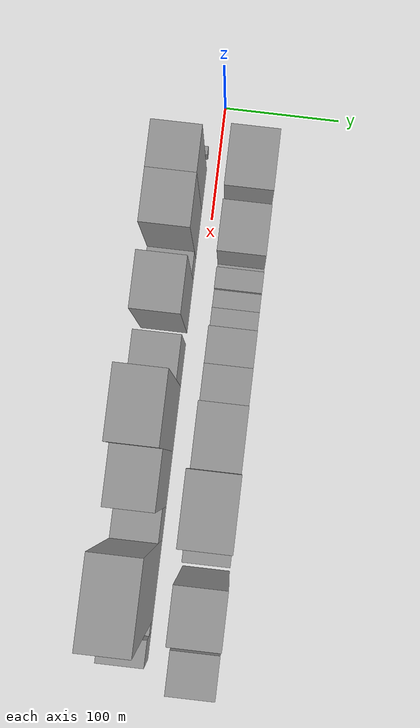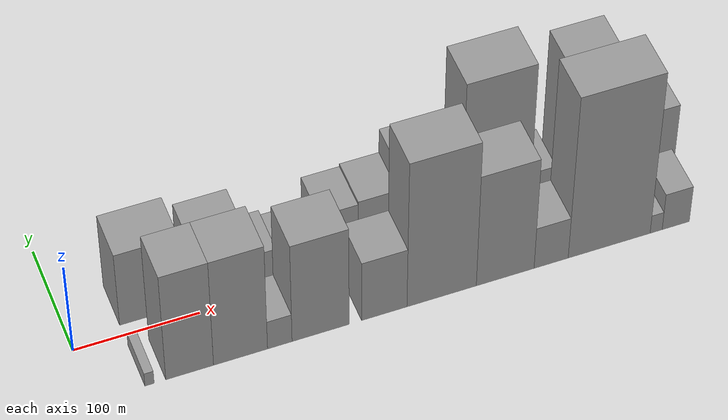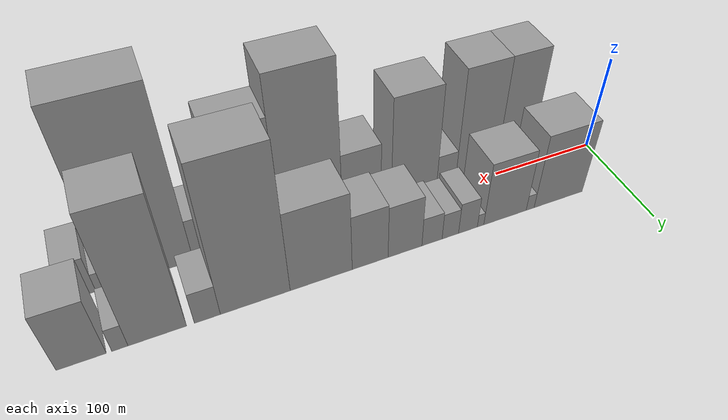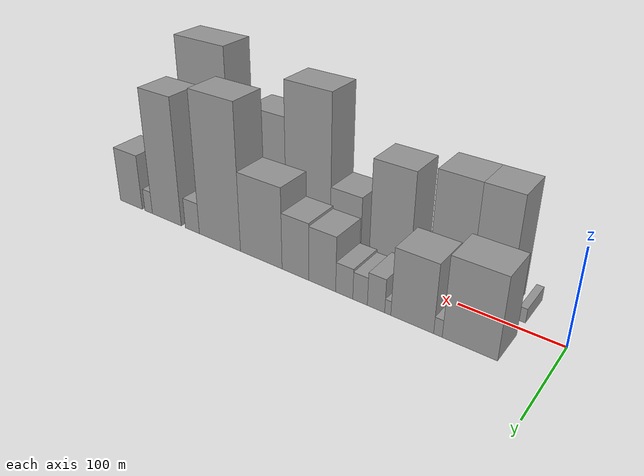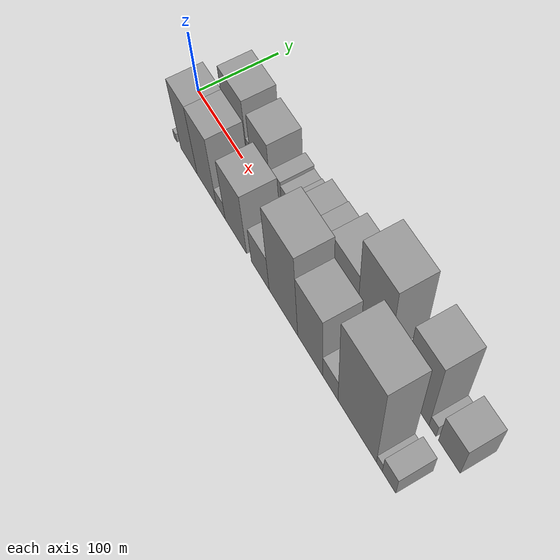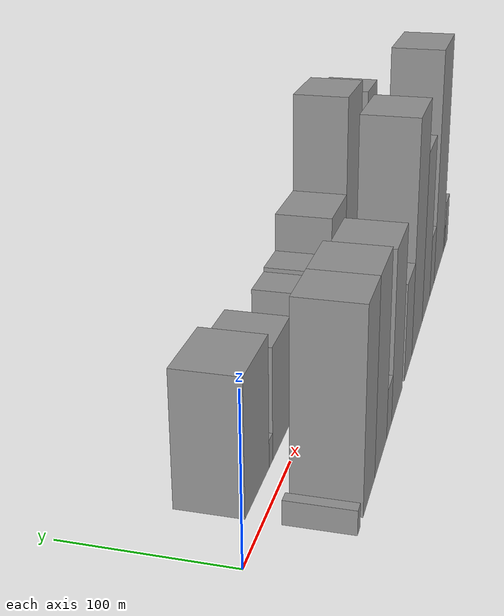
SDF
<sdf version="1.6">
 <world name="default">
  <scene>
   <sky><clouds><speed>12</speed></clouds></sky>
   <ambient>0.4 0.4 0.4 1</ambient>
   <background>0.7 0.7 0.7 1</background>
   <shadows>1</shadows>
  </scene>
  <gravity>0 0 -9.8066</gravity>
  <magnetic_field>6e-06 2.3e-05 -4.2e-05</magnetic_field>
  <physics default="0" name="default_physics" type="ode">
   <ode>
    <solver>
     <type>quick</type>
     <iters>10</iters>
     <sor>1.0</sor>
     <use_dynamic_moi_rescaling>0</use_dynamic_moi_rescaling>
    </solver>
    <constraints>
     <cfm>0</cfm>
     <erp>0.2</erp>
     <contact_max_correcting_vel>100</contact_max_correcting_vel>
     <contact_surface_layer>0.001</contact_surface_layer>
    </constraints>
   </ode>
   <max_step_size>0.004</max_step_size>
   <real_time_factor>1</real_time_factor>
   <real_time_update_rate>250</real_time_update_rate>
  </physics>
  <light name="sun" type="directional">
   <pose>0 0 10 0 0 0</pose>
   <diffuse>0.8 0.8 0.8 1</diffuse>
   <specular>0.2 0.2 0.2 1</specular>
   <attenuation>
    <range>1000</range>
    <constant>0.9</constant>
    <linear>0.01</linear>
    <quadratic>0.001</quadratic>
   </attenuation>
   <direction>-0.5 0.1 -0.9</direction>
  </light>
  <model name="building_1">
   <static>1</static>
   <pose>65.1874 30.0000 0 0.000000 0.000000 1.570796</pose>
   <link name="link">
    <pose>0 0 42.00 0 0 0</pose>
    <collision name="collision"><geometry><box><size>40.0000 50.3748 84.0000</size></box></geometry></collision>
    <visual name="visual">
     <cast_shadows>0</cast_shadows>
     <geometry><box><size>40.0000 50.3748 84.0000</size></box></geometry>
     <material>
      <script>
       <uri>model://grey_wall/materials/scripts</uri>
       <uri>model://grey_wall/materials/textures</uri>
       <name>vrc/grey_wall</name>
      </script>
     </material>
    </visual>
   </link>
  </model>
  <model name="building_2">
   <static>1</static>
   <pose>94.4292 30.0000 0 0.000000 0.000000 1.570796</pose>
   <link name="link">
    <pose>0 0 9.00 0 0 0</pose>
    <collision name="collision"><geometry><box><size>40.0000 8.1088 18.0000</size></box></geometry></collision>
    <visual name="visual">
     <cast_shadows>0</cast_shadows>
     <geometry><box><size>40.0000 8.1088 18.0000</size></box></geometry>
     <material>
      <script>
       <uri>model://grey_wall/materials/scripts</uri>
       <uri>model://grey_wall/materials/textures</uri>
       <name>vrc/grey_wall</name>
      </script>
     </material>
    </visual>
   </link>
  </model>
  <model name="building_3">
   <static>1</static>
   <pose>119.7046 30.0000 0 0.000000 0.000000 1.570796</pose>
   <link name="link">
    <pose>0 0 36.00 0 0 0</pose>
    <collision name="collision"><geometry><box><size>40.0000 42.4419 72.0000</size></box></geometry></collision>
    <visual name="visual">
     <cast_shadows>0</cast_shadows>
     <geometry><box><size>40.0000 42.4419 72.0000</size></box></geometry>
     <material>
      <script>
       <uri>model://grey_wall/materials/scripts</uri>
       <uri>model://grey_wall/materials/textures</uri>
       <name>vrc/grey_wall</name>
      </script>
     </material>
    </visual>
   </link>
  </model>
  <model name="building_4">
   <static>1</static>
   <pose>144.0658 30.0000 0 0.000000 0.000000 1.570796</pose>
   <link name="link">
    <pose>0 0 7.50 0 0 0</pose>
    <collision name="collision"><geometry><box><size>40.0000 6.2805 15.0000</size></box></geometry></collision>
    <visual name="visual">
     <cast_shadows>0</cast_shadows>
     <geometry><box><size>40.0000 6.2805 15.0000</size></box></geometry>
     <material>
      <script>
       <uri>model://grey_wall/materials/scripts</uri>
       <uri>model://grey_wall/materials/textures</uri>
       <name>vrc/grey_wall</name>
      </script>
     </material>
    </visual>
   </link>
  </model>
  <model name="building_5">
   <static>1</static>
   <pose>156.3251 30.0000 0 0.000000 0.000000 1.570796</pose>
   <link name="link">
    <pose>0 0 18.00 0 0 0</pose>
    <collision name="collision"><geometry><box><size>40.0000 18.2381 36.0000</size></box></geometry></collision>
    <visual name="visual">
     <cast_shadows>0</cast_shadows>
     <geometry><box><size>40.0000 18.2381 36.0000</size></box></geometry>
     <material>
      <script>
       <uri>model://grey_wall/materials/scripts</uri>
       <uri>model://grey_wall/materials/textures</uri>
       <name>vrc/grey_wall</name>
      </script>
     </material>
    </visual>
   </link>
  </model>
  <model name="building_6">
   <static>1</static>
   <pose>173.2740 30.0000 0 0.000000 0.000000 1.570796</pose>
   <link name="link">
    <pose>0 0 15.00 0 0 0</pose>
    <collision name="collision"><geometry><box><size>40.0000 15.6598 30.0000</size></box></geometry></collision>
    <visual name="visual">
     <cast_shadows>0</cast_shadows>
     <geometry><box><size>40.0000 15.6598 30.0000</size></box></geometry>
     <material>
      <script>
       <uri>model://grey_wall/materials/scripts</uri>
       <uri>model://grey_wall/materials/textures</uri>
       <name>vrc/grey_wall</name>
      </script>
     </material>
    </visual>
   </link>
  </model>
  <model name="building_7">
   <static>1</static>
   <pose>190.5746 30.0000 0 0.000000 0.000000 1.570796</pose>
   <link name="link">
    <pose>0 0 16.50 0 0 0</pose>
    <collision name="collision"><geometry><box><size>40.0000 18.9414 33.0000</size></box></geometry></collision>
    <visual name="visual">
     <cast_shadows>0</cast_shadows>
     <geometry><box><size>40.0000 18.9414 33.0000</size></box></geometry>
     <material>
      <script>
       <uri>model://grey_wall/materials/scripts</uri>
       <uri>model://grey_wall/materials/textures</uri>
       <name>vrc/grey_wall</name>
      </script>
     </material>
    </visual>
   </link>
  </model>
  <model name="building_8">
   <static>1</static>
   <pose>215.5823 30.0000 0 0.000000 0.000000 1.570796</pose>
   <link name="link">
    <pose>0 0 30.00 0 0 0</pose>
    <collision name="collision"><geometry><box><size>40.0000 31.0741 60.0000</size></box></geometry></collision>
    <visual name="visual">
     <cast_shadows>0</cast_shadows>
     <geometry><box><size>40.0000 31.0741 60.0000</size></box></geometry>
     <material>
      <script>
       <uri>model://grey_wall/materials/scripts</uri>
       <uri>model://grey_wall/materials/textures</uri>
       <name>vrc/grey_wall</name>
      </script>
     </material>
    </visual>
   </link>
  </model>
  <model name="building_9">
   <static>1</static>
   <pose>247.0702 30.0000 0 0.000000 0.000000 1.570796</pose>
   <link name="link">
    <pose>0 0 31.50 0 0 0</pose>
    <collision name="collision"><geometry><box><size>40.0000 31.9017 63.0000</size></box></geometry></collision>
    <visual name="visual">
     <cast_shadows>0</cast_shadows>
     <geometry><box><size>40.0000 31.9017 63.0000</size></box></geometry>
     <material>
      <script>
       <uri>model://grey_wall/materials/scripts</uri>
       <uri>model://grey_wall/materials/textures</uri>
       <name>vrc/grey_wall</name>
      </script>
     </material>
    </visual>
   </link>
  </model>
  <model name="building_10">
   <static>1</static>
   <pose>289.5598 30.0000 0 0.000000 0.000000 1.570796</pose>
   <link name="link">
    <pose>0 0 45.00 0 0 0</pose>
    <collision name="collision"><geometry><box><size>40.0000 53.0774 90.0000</size></box></geometry></collision>
    <visual name="visual">
     <cast_shadows>0</cast_shadows>
     <geometry><box><size>40.0000 53.0774 90.0000</size></box></geometry>
     <material>
      <script>
       <uri>model://grey_wall/materials/scripts</uri>
       <uri>model://grey_wall/materials/textures</uri>
       <name>vrc/grey_wall</name>
      </script>
     </material>
    </visual>
   </link>
  </model>
  <model name="building_11">
   <static>1</static>
   <pose>344.4582 30.0000 0 0.000000 0.000000 1.570796</pose>
   <link name="link">
    <pose>0 0 81.00 0 0 0</pose>
    <collision name="collision"><geometry><box><size>40.0000 56.7194 162.0000</size></box></geometry></collision>
    <visual name="visual">
     <cast_shadows>0</cast_shadows>
     <geometry><box><size>40.0000 56.7194 162.0000</size></box></geometry>
     <material>
      <script>
       <uri>model://grey_wall/materials/scripts</uri>
       <uri>model://grey_wall/materials/textures</uri>
       <name>vrc/grey_wall</name>
      </script>
     </material>
    </visual>
   </link>
  </model>
  <model name="building_12">
   <static>1</static>
   <pose>383.0002 30.0000 0 0.000000 0.000000 1.570796</pose>
   <link name="link">
    <pose>0 0 18.00 0 0 0</pose>
    <collision name="collision"><geometry><box><size>40.0000 20.3648 36.0000</size></box></geometry></collision>
    <visual name="visual">
     <cast_shadows>0</cast_shadows>
     <geometry><box><size>40.0000 20.3648 36.0000</size></box></geometry>
     <material>
      <script>
       <uri>model://grey_wall/materials/scripts</uri>
       <uri>model://grey_wall/materials/textures</uri>
       <name>vrc/grey_wall</name>
      </script>
     </material>
    </visual>
   </link>
  </model>
  <model name="building_13">
   <static>1</static>
   <pose>421.2327 30.0000 0 0.000000 0.000000 1.570796</pose>
   <link name="link">
    <pose>0 0 73.50 0 0 0</pose>
    <collision name="collision"><geometry><box><size>40.0000 44.1001 147.0000</size></box></geometry></collision>
    <visual name="visual">
     <cast_shadows>0</cast_shadows>
     <geometry><box><size>40.0000 44.1001 147.0000</size></box></geometry>
     <material>
      <script>
       <uri>model://grey_wall/materials/scripts</uri>
       <uri>model://grey_wall/materials/textures</uri>
       <name>vrc/grey_wall</name>
      </script>
     </material>
    </visual>
   </link>
  </model>
  <model name="building_14">
   <static>1</static>
   <pose>449.2191 30.0000 0 0.000000 0.000000 1.570796</pose>
   <link name="link">
    <pose>0 0 13.50 0 0 0</pose>
    <collision name="collision"><geometry><box><size>40.0000 11.8728 27.0000</size></box></geometry></collision>
    <visual name="visual">
     <cast_shadows>0</cast_shadows>
     <geometry><box><size>40.0000 11.8728 27.0000</size></box></geometry>
     <material>
      <script>
       <uri>model://grey_wall/materials/scripts</uri>
       <uri>model://grey_wall/materials/textures</uri>
       <name>vrc/grey_wall</name>
      </script>
     </material>
    </visual>
   </link>
  </model>
  <model name="building_15">
   <static>1</static>
   <pose>477.0373 30.0000 0 0.000000 0.000000 1.570796</pose>
   <link name="link">
    <pose>0 0 33.00 0 0 0</pose>
    <collision name="collision"><geometry><box><size>40.0000 35.7635 66.0000</size></box></geometry></collision>
    <visual name="visual">
     <cast_shadows>0</cast_shadows>
     <geometry><box><size>40.0000 35.7635 66.0000</size></box></geometry>
     <material>
      <script>
       <uri>model://grey_wall/materials/scripts</uri>
       <uri>model://grey_wall/materials/textures</uri>
       <name>vrc/grey_wall</name>
      </script>
     </material>
    </visual>
   </link>
  </model>
  <model name="building_16">
   <static>1</static>
   <pose>43.6411 -30.0000 0 0.000000 0.000000 1.570796</pose>
   <link name="link">
    <pose>0 0 7.50 0 0 0</pose>
    <collision name="collision"><geometry><box><size>40.0000 7.2822 15.0000</size></box></geometry></collision>
    <visual name="visual">
     <cast_shadows>0</cast_shadows>
     <geometry><box><size>40.0000 7.2822 15.0000</size></box></geometry>
     <material>
      <script>
       <uri>model://grey_wall/materials/scripts</uri>
       <uri>model://grey_wall/materials/textures</uri>
       <name>vrc/grey_wall</name>
      </script>
     </material>
    </visual>
   </link>
  </model>
  <model name="building_17">
   <static>1</static>
   <pose>74.9755 -30.0000 0 0.000000 0.000000 1.570796</pose>
   <link name="link">
    <pose>0 0 61.50 0 0 0</pose>
    <collision name="collision"><geometry><box><size>40.0000 37.3868 123.0000</size></box></geometry></collision>
    <visual name="visual">
     <cast_shadows>0</cast_shadows>
     <geometry><box><size>40.0000 37.3868 123.0000</size></box></geometry>
     <material>
      <script>
       <uri>model://grey_wall/materials/scripts</uri>
       <uri>model://grey_wall/materials/textures</uri>
       <name>vrc/grey_wall</name>
      </script>
     </material>
    </visual>
   </link>
  </model>
  <model name="building_18">
   <static>1</static>
   <pose>114.9424 -30.0000 0 0.000000 0.000000 1.570796</pose>
   <link name="link">
    <pose>0 0 61.50 0 0 0</pose>
    <collision name="collision"><geometry><box><size>40.0000 42.5469 123.0000</size></box></geometry></collision>
    <visual name="visual">
     <cast_shadows>0</cast_shadows>
     <geometry><box><size>40.0000 42.5469 123.0000</size></box></geometry>
     <material>
      <script>
       <uri>model://grey_wall/materials/scripts</uri>
       <uri>model://grey_wall/materials/textures</uri>
       <name>vrc/grey_wall</name>
      </script>
     </material>
    </visual>
   </link>
  </model>
  <model name="building_19">
   <static>1</static>
   <pose>145.9340 -30.0000 0 0.000000 0.000000 1.570796</pose>
   <link name="link">
    <pose>0 0 16.50 0 0 0</pose>
    <collision name="collision"><geometry><box><size>40.0000 19.4363 33.0000</size></box></geometry></collision>
    <visual name="visual">
     <cast_shadows>0</cast_shadows>
     <geometry><box><size>40.0000 19.4363 33.0000</size></box></geometry>
     <material>
      <script>
       <uri>model://grey_wall/materials/scripts</uri>
       <uri>model://grey_wall/materials/textures</uri>
       <name>vrc/grey_wall</name>
      </script>
     </material>
    </visual>
   </link>
  </model>
  <model name="building_20">
   <static>1</static>
   <pose>178.3978 -30.0000 0 0.000000 0.000000 1.570796</pose>
   <link name="link">
    <pose>0 0 57.00 0 0 0</pose>
    <collision name="collision"><geometry><box><size>40.0000 45.4912 114.0000</size></box></geometry></collision>
    <visual name="visual">
     <cast_shadows>0</cast_shadows>
     <geometry><box><size>40.0000 45.4912 114.0000</size></box></geometry>
     <material>
      <script>
       <uri>model://grey_wall/materials/scripts</uri>
       <uri>model://grey_wall/materials/textures</uri>
       <name>vrc/grey_wall</name>
      </script>
     </material>
    </visual>
   </link>
  </model>
  <model name="building_21">
   <static>1</static>
   <pose>229.4100 -30.0000 0 0.000000 0.000000 1.570796</pose>
   <link name="link">
    <pose>0 0 34.50 0 0 0</pose>
    <collision name="collision"><geometry><box><size>40.0000 36.5333 69.0000</size></box></geometry></collision>
    <visual name="visual">
     <cast_shadows>0</cast_shadows>
     <geometry><box><size>40.0000 36.5333 69.0000</size></box></geometry>
     <material>
      <script>
       <uri>model://grey_wall/materials/scripts</uri>
       <uri>model://grey_wall/materials/textures</uri>
       <name>vrc/grey_wall</name>
      </script>
     </material>
    </visual>
   </link>
  </model>
  <model name="building_22">
   <static>1</static>
   <pose>275.8295 -30.0000 0 0.000000 0.000000 1.570796</pose>
   <link name="link">
    <pose>0 0 84.00 0 0 0</pose>
    <collision name="collision"><geometry><box><size>40.0000 56.3055 168.0000</size></box></geometry></collision>
    <visual name="visual">
     <cast_shadows>0</cast_shadows>
     <geometry><box><size>40.0000 56.3055 168.0000</size></box></geometry>
     <material>
      <script>
       <uri>model://grey_wall/materials/scripts</uri>
       <uri>model://grey_wall/materials/textures</uri>
       <name>vrc/grey_wall</name>
      </script>
     </material>
    </visual>
   </link>
  </model>
  <model name="building_23">
   <static>1</static>
   <pose>327.6600 -30.0000 0 0.000000 0.000000 1.570796</pose>
   <link name="link">
    <pose>0 0 64.50 0 0 0</pose>
    <collision name="collision"><geometry><box><size>40.0000 47.3555 129.0000</size></box></geometry></collision>
    <visual name="visual">
     <cast_shadows>0</cast_shadows>
     <geometry><box><size>40.0000 47.3555 129.0000</size></box></geometry>
     <material>
      <script>
       <uri>model://grey_wall/materials/scripts</uri>
       <uri>model://grey_wall/materials/textures</uri>
       <name>vrc/grey_wall</name>
      </script>
     </material>
    </visual>
   </link>
  </model>
  <model name="building_24">
   <static>1</static>
   <pose>365.4144 -30.0000 0 0.000000 0.000000 1.570796</pose>
   <link name="link">
    <pose>0 0 24.00 0 0 0</pose>
    <collision name="collision"><geometry><box><size>40.0000 28.1533 48.0000</size></box></geometry></collision>
    <visual name="visual">
     <cast_shadows>0</cast_shadows>
     <geometry><box><size>40.0000 28.1533 48.0000</size></box></geometry>
     <material>
      <script>
       <uri>model://grey_wall/materials/scripts</uri>
       <uri>model://grey_wall/materials/textures</uri>
       <name>vrc/grey_wall</name>
      </script>
     </material>
    </visual>
   </link>
  </model>
  <model name="building_25">
   <static>1</static>
   <pose>413.5925 -30.0000 0 0.000000 0.000000 1.570796</pose>
   <link name="link">
    <pose>0 0 93.00 0 0 0</pose>
    <collision name="collision"><geometry><box><size>40.0000 68.2031 186.0000</size></box></geometry></collision>
    <visual name="visual">
     <cast_shadows>0</cast_shadows>
     <geometry><box><size>40.0000 68.2031 186.0000</size></box></geometry>
     <material>
      <script>
       <uri>model://grey_wall/materials/scripts</uri>
       <uri>model://grey_wall/materials/textures</uri>
       <name>vrc/grey_wall</name>
      </script>
     </material>
    </visual>
   </link>
  </model>
  <model name="building_26">
   <static>1</static>
   <pose>452.7424 -30.0000 0 0.000000 0.000000 1.570796</pose>
   <link name="link">
    <pose>0 0 10.50 0 0 0</pose>
    <collision name="collision"><geometry><box><size>40.0000 10.0966 21.0000</size></box></geometry></collision>
    <visual name="visual">
     <cast_shadows>0</cast_shadows>
     <geometry><box><size>40.0000 10.0966 21.0000</size></box></geometry>
     <material>
      <script>
       <uri>model://grey_wall/materials/scripts</uri>
       <uri>model://grey_wall/materials/textures</uri>
       <name>vrc/grey_wall</name>
      </script>
     </material>
    </visual>
   </link>
  </model>
  <model name="building_27">
   <static>1</static>
   <pose>469.1866 -30.0000 0 0.000000 0.000000 1.570796</pose>
   <link name="link">
    <pose>0 0 21.00 0 0 0</pose>
    <collision name="collision"><geometry><box><size>40.0000 22.7919 42.0000</size></box></geometry></collision>
    <visual name="visual">
     <cast_shadows>0</cast_shadows>
     <geometry><box><size>40.0000 22.7919 42.0000</size></box></geometry>
     <material>
      <script>
       <uri>model://grey_wall/materials/scripts</uri>
       <uri>model://grey_wall/materials/textures</uri>
       <name>vrc/grey_wall</name>
      </script>
     </material>
    </visual>
   </link>
  </model>
 </world>
</sdf>
